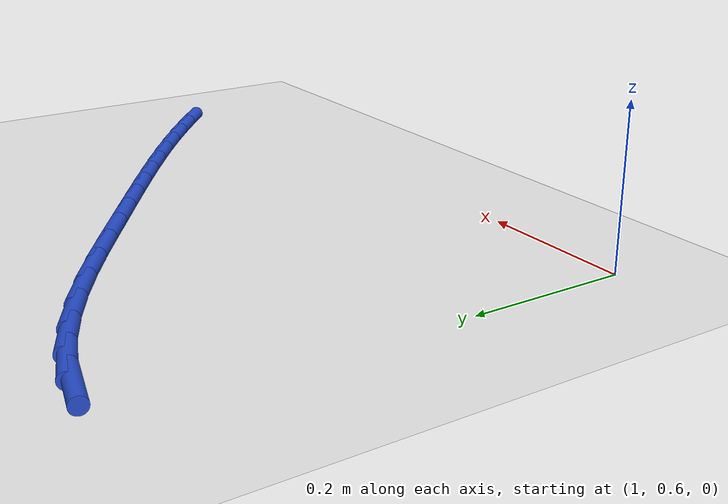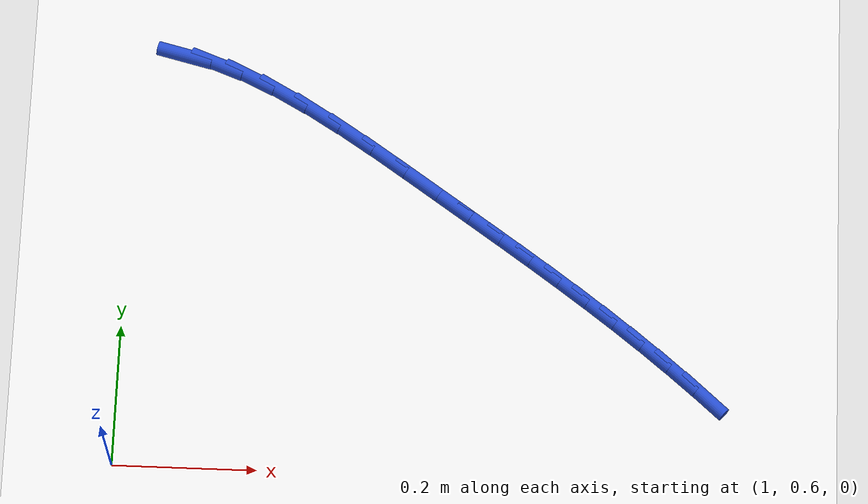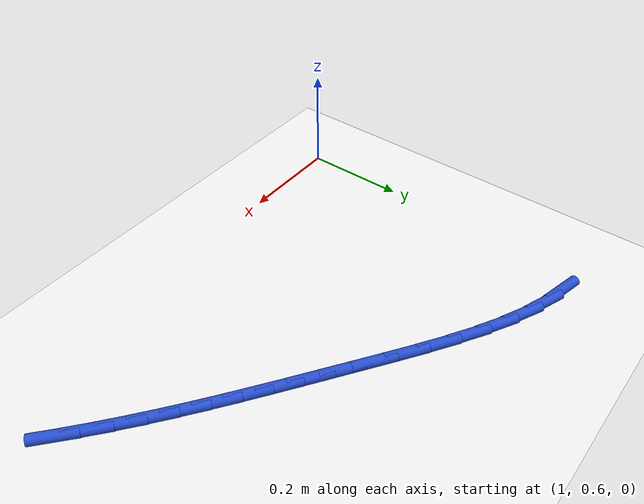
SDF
<sdf version="1.6">
 <world name="default">
  <model name="ground_plane">
   <static>1</static>
   <link name="link">
    <collision name="collision">
     <geometry><plane><normal>0 0 1</normal><size>100 100</size></plane></geometry>
     <surface><friction><ode><mu>100</mu><mu2>50</mu2></ode></friction></surface>
    </collision>
    <visual name="visual">
     <cast_shadows>0</cast_shadows>
     <geometry><plane><normal>0 0 1</normal><size>100 100</size></plane></geometry>
     <material>
      <script><uri>file://media/materials/scripts/gazebo.material</uri><name>Gazebo/WhiteGlow</name></script>
     </material>
    </visual>
   </link>
  </model>
  <model name="line">
   <link name="link_34">
    <pose>1.066387256461347 1.2041609311395018 0.01 0 1.57 -0.24368413378447712</pose>
    <collision name="collision">
     <geometry><cylinder><radius>0.01</radius><length>0.08</length></cylinder></geometry>
    </collision>
    <visual name="visual">
     <material>
      <script><name>Gazebo/Blue</name><uri>file://media/materials/scripts/gazebo.material</uri></script>
     </material>
     <geometry><cylinder><radius>0.01</radius><length>0.08</length></cylinder></geometry>
    </visual>
   </link>
   <link name="link_35">
    <pose>1.1130312927364672 1.1925640573035186 0.01 0 1.57 -0.3596852443102934</pose>
    <collision name="collision">
     <geometry><cylinder><radius>0.01</radius><length>0.08</length></cylinder></geometry>
    </collision>
    <visual name="visual">
     <material>
      <script><name>Gazebo/Blue</name><uri>file://media/materials/scripts/gazebo.material</uri></script>
     </material>
     <geometry><cylinder><radius>0.01</radius><length>0.08</length></cylinder></geometry>
    </visual>
   </link>
   <link name="link_36">
    <pose>1.1610137529367413 1.1745205629101596 0.01 0 1.57 -0.44502400251741153</pose>
    <collision name="collision">
     <geometry><cylinder><radius>0.01</radius><length>0.08</length></cylinder></geometry>
    </collision>
    <visual name="visual">
     <material>
      <script><name>Gazebo/Blue</name><uri>file://media/materials/scripts/gazebo.material</uri></script>
     </material>
     <geometry><cylinder><radius>0.01</radius><length>0.08</length></cylinder></geometry>
    </visual>
   </link>
   <link name="link_37">
    <pose>1.209846828009502 1.1512304762867032 0.01 0 1.57 -0.5071855707586936</pose>
    <collision name="collision">
     <geometry><cylinder><radius>0.01</radius><length>0.08</length></cylinder></geometry>
    </collision>
    <visual name="visual">
     <material>
      <script><name>Gazebo/Blue</name><uri>file://media/materials/scripts/gazebo.material</uri></script>
     </material>
     <geometry><cylinder><radius>0.01</radius><length>0.08</length></cylinder></geometry>
    </visual>
   </link>
   <link name="link_38">
    <pose>1.2590427089020826 1.1238938257604276 0.01 0 1.57 -0.55144392417431</pose>
    <collision name="collision">
     <geometry><cylinder><radius>0.01</radius><length>0.08</length></cylinder></geometry>
    </collision>
    <visual name="visual">
     <material>
      <script><name>Gazebo/Blue</name><uri>file://media/materials/scripts/gazebo.material</uri></script>
     </material>
     <geometry><cylinder><radius>0.01</radius><length>0.08</length></cylinder></geometry>
    </visual>
   </link>
   <link name="link_39">
    <pose>1.3081135865618168 1.0937106396586118 0.01 0 1.57 -0.581175812801306</pose>
    <collision name="collision">
     <geometry><cylinder><radius>0.01</radius><length>0.08</length></cylinder></geometry>
    </collision>
    <visual name="visual">
     <material>
      <script><name>Gazebo/Blue</name><uri>file://media/materials/scripts/gazebo.material</uri></script>
     </material>
     <geometry><cylinder><radius>0.01</radius><length>0.08</length></cylinder></geometry>
    </visual>
   </link>
   <link name="link_40">
    <pose>1.3565716519360371 1.0618809463085344 0.01 0 1.57 -0.5982315609858568</pose>
    <collision name="collision">
     <geometry><cylinder><radius>0.01</radius><length>0.08</length></cylinder></geometry>
    </collision>
    <visual name="visual">
     <material>
      <script><name>Gazebo/Blue</name><uri>file://media/materials/scripts/gazebo.material</uri></script>
     </material>
     <geometry><cylinder><radius>0.01</radius><length>0.08</length></cylinder></geometry>
    </visual>
   </link>
   <link name="link_41">
    <pose>1.4039290959720776 1.0296047740374736 0.01 0 1.57 -0.6034413639547701</pose>
    <collision name="collision">
     <geometry><cylinder><radius>0.01</radius><length>0.08</length></cylinder></geometry>
    </collision>
    <visual name="visual">
     <material>
      <script><name>Gazebo/Blue</name><uri>file://media/materials/scripts/gazebo.material</uri></script>
     </material>
     <geometry><cylinder><radius>0.01</radius><length>0.08</length></cylinder></geometry>
    </visual>
   </link>
   <link name="link_42">
    <pose>1.4497129716317485 0.9980504893112909 0.01 0 1.57 -0.6036732991528708</pose>
    <collision name="collision">
     <geometry><cylinder><radius>0.01</radius><length>0.08</length></cylinder></geometry>
    </collision>
    <visual name="visual">
     <material>
      <script><name>Gazebo/Blue</name><uri>file://media/materials/scripts/gazebo.material</uri></script>
     </material>
     <geometry><cylinder><radius>0.01</radius><length>0.08</length></cylinder></geometry>
    </visual>
   </link>
   <link name="link_43">
    <pose>1.4937937129604875 0.9676549235607128 0.01 0 1.57 -0.606281143109904</pose>
    <collision name="collision">
     <geometry><cylinder><radius>0.01</radius><length>0.08</length></cylinder></geometry>
    </collision>
    <visual name="visual">
     <material>
      <script><name>Gazebo/Blue</name><uri>file://media/materials/scripts/gazebo.material</uri></script>
     </material>
     <geometry><cylinder><radius>0.01</radius><length>0.08</length></cylinder></geometry>
    </visual>
   </link>
   <link name="link_44">
    <pose>1.536386001065157 0.9381215283123823 0.01 0 1.57 -0.6118019747373535</pose>
    <collision name="collision">
     <geometry><cylinder><radius>0.01</radius><length>0.08</length></cylinder></geometry>
    </collision>
    <visual name="visual">
     <material>
      <script><name>Gazebo/Blue</name><uri>file://media/materials/scripts/gazebo.material</uri></script>
     </material>
     <geometry><cylinder><radius>0.01</radius><length>0.08</length></cylinder></geometry>
    </visual>
   </link>
   <link name="link_45">
    <pose>1.5777195522630008 0.9091217242570024 0.01 0 1.57 -0.6203454531643335</pose>
    <collision name="collision">
     <geometry><cylinder><radius>0.01</radius><length>0.08</length></cylinder></geometry>
    </collision>
    <visual name="visual">
     <material>
      <script><name>Gazebo/Blue</name><uri>file://media/materials/scripts/gazebo.material</uri></script>
     </material>
     <geometry><cylinder><radius>0.01</radius><length>0.08</length></cylinder></geometry>
    </visual>
   </link>
   <link name="link_46">
    <pose>1.6180240828712615 0.8803269320852743 0.01 0 1.57 -0.6318900314255488</pose>
    <collision name="collision">
     <geometry><cylinder><radius>0.01</radius><length>0.08</length></cylinder></geometry>
    </collision>
    <visual name="visual">
     <material>
      <script><name>Gazebo/Blue</name><uri>file://media/materials/scripts/gazebo.material</uri></script>
     </material>
     <geometry><cylinder><radius>0.01</radius><length>0.08</length></cylinder></geometry>
    </visual>
   </link>
   <link name="link_47">
    <pose>1.6575293092071839 0.8514085724879014 0.01 0 1.57 -0.6462696024870702</pose>
    <collision name="collision">
     <geometry><cylinder><radius>0.01</radius><length>0.08</length></cylinder></geometry>
    </collision>
    <visual name="visual">
     <material>
      <script><name>Gazebo/Blue</name><uri>file://media/materials/scripts/gazebo.material</uri></script>
     </material>
     <geometry><cylinder><radius>0.01</radius><length>0.08</length></cylinder></geometry>
    </visual>
   </link>
   <link name="link_48">
    <pose>1.6964649475880114 0.8220380661555847 0.01 0 1.57 -0.6631754616313987</pose>
    <collision name="collision">
     <geometry><cylinder><radius>0.01</radius><length>0.08</length></cylinder></geometry>
    </collision>
    <visual name="visual">
     <material>
      <script><name>Gazebo/Blue</name><uri>file://media/materials/scripts/gazebo.material</uri></script>
     </material>
     <geometry><cylinder><radius>0.01</radius><length>0.08</length></cylinder></geometry>
    </visual>
   </link>
   <link name="link_49">
    <pose>1.7350607122204624 0.7918868361316789 0.01 0 1.57 -0.6818842022915004</pose>
    <collision name="collision">
     <geometry><cylinder><radius>0.01</radius><length>0.08</length></cylinder></geometry>
    </collision>
    <visual name="visual">
     <material>
      <script><name>Gazebo/Blue</name><uri>file://media/materials/scripts/gazebo.material</uri></script>
     </material>
     <geometry><cylinder><radius>0.01</radius><length>0.08</length></cylinder></geometry>
    </visual>
   </link>
   <link name="link_50">
    <pose>1.7734849497245257 0.7606947133505144 0.01 0 1.57 -0.7010879347161839</pose>
    <collision name="collision">
     <geometry><cylinder><radius>0.01</radius><length>0.08</length></cylinder></geometry>
    </collision>
    <visual name="visual">
     <material>
      <script><name>Gazebo/Blue</name><uri>file://media/materials/scripts/gazebo.material</uri></script>
     </material>
     <geometry><cylinder><radius>0.01</radius><length>0.08</length></cylinder></geometry>
    </visual>
   </link>
   <link name="link_51">
    <pose>1.811684052918641 0.7284489458646023 0.01 0 1.57 -0.7206192090960619</pose>
    <collision name="collision">
     <geometry><cylinder><radius>0.01</radius><length>0.08</length></cylinder></geometry>
    </collision>
    <visual name="visual">
     <material>
      <script><name>Gazebo/Blue</name><uri>file://media/materials/scripts/gazebo.material</uri></script>
     </material>
     <geometry><cylinder><radius>0.01</radius><length>0.08</length></cylinder></geometry>
    </visual>
   </link>
  </model>
 </world>
</sdf>
